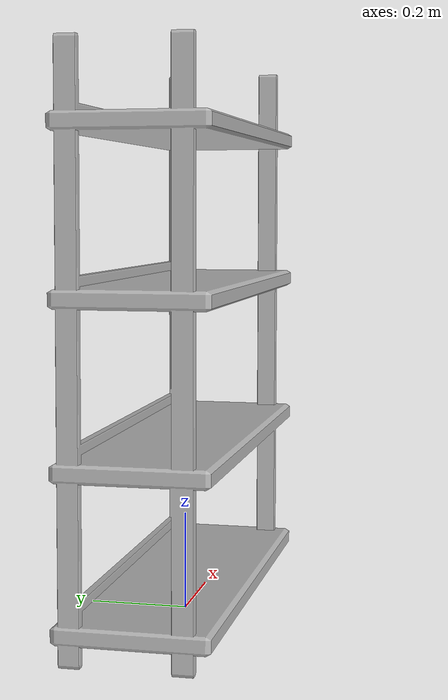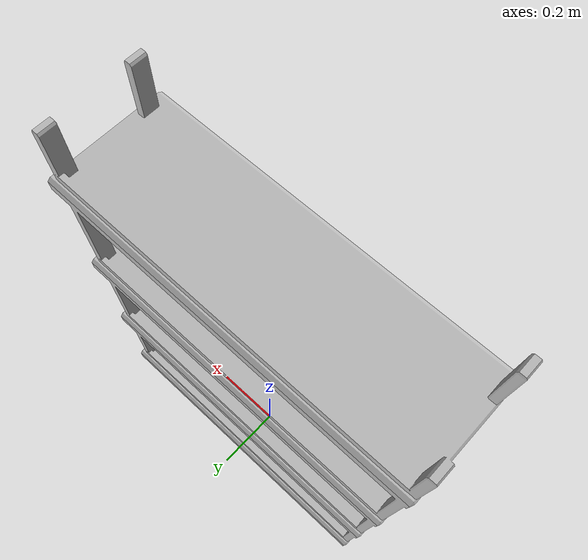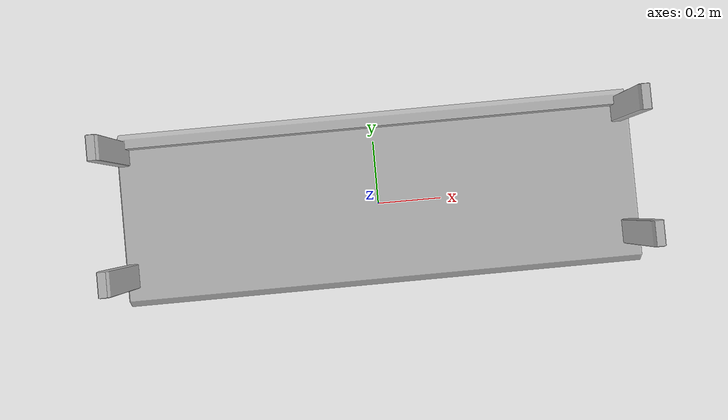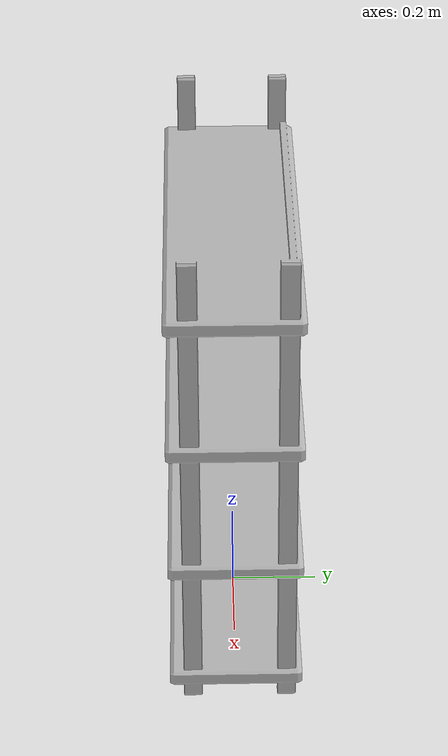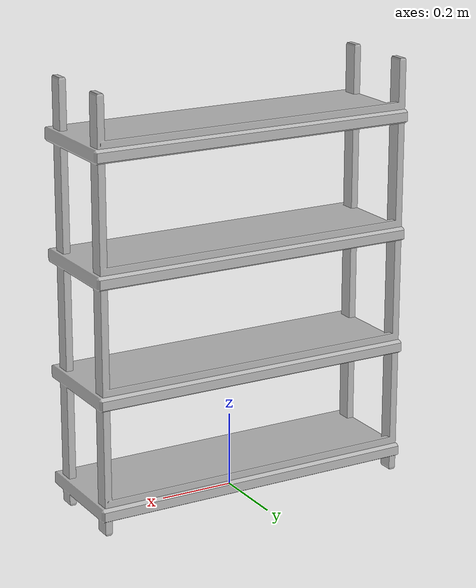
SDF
<?xml version="1.0"?>
<sdf version="1.6">
  <model name="aws_robomaker_residential_ShoeRack_01">
    <link name="link_ShoeRack_01">
      <inertial>
        <mass>6</mass>
        <inertia>
          <ixx>1</ixx>
          <ixy>0</ixy>
          <ixz>0</ixz>
          <iyy>1</iyy>
          <iyz>0</iyz>
          <izz>1</izz>
        </inertia>
      </inertial>
      <collision name="collision">
        <geometry>
          <mesh>
            <uri>model://aws_robomaker_residential_ShoeRack_01/meshes/aws_ShoeRack_01_collision.DAE</uri>
            <scale>1 1 1</scale>
          </mesh>
        </geometry>
        <surface>
          <friction>
            <ode>
              <mu>0.2</mu>
              <mu2>0.2</mu2>
            </ode>
          </friction>
          <contact>
            <ode>
              <kd>2500</kd>
            </ode>
          </contact>
        </surface>
      </collision>
      <visual name="visual">
        <geometry>
          <mesh>
            <uri>model://aws_robomaker_residential_ShoeRack_01/meshes/aws_ShoeRack_01_visual.DAE</uri>
          </mesh>
        </geometry>
        <meta>
          <layer> 1 </layer>
        </meta>
      </visual>
    </link>
  </model>
</sdf>
